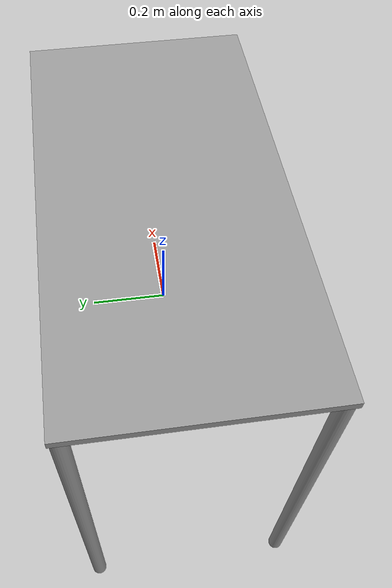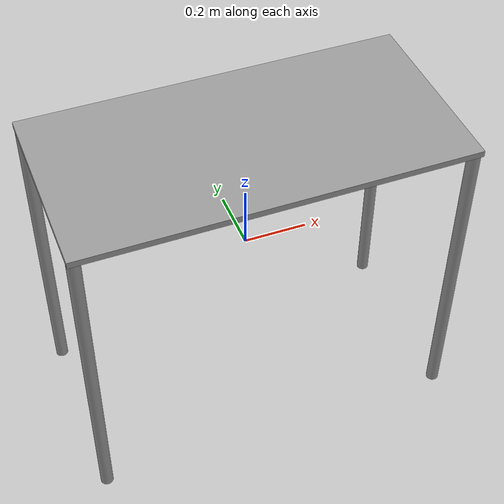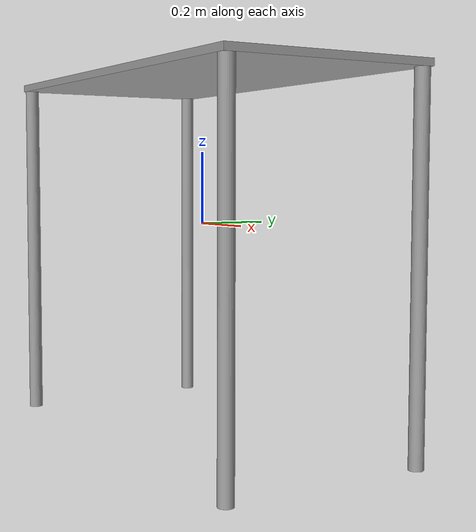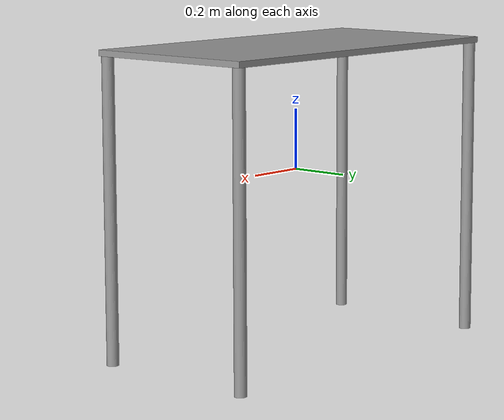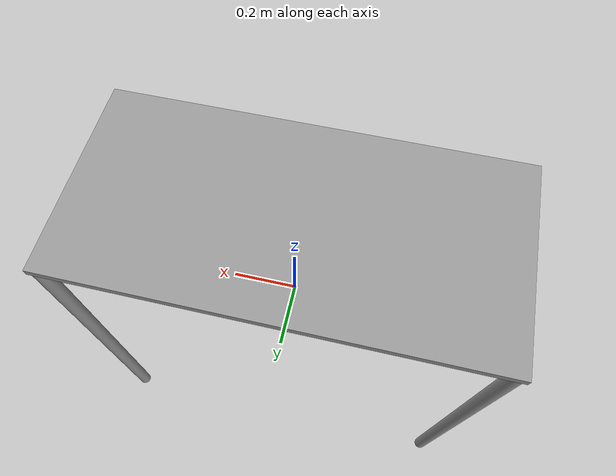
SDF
<?xml version='1.0'?>
<sdf version='1.6'>
  <model name='table'>
    <link name='link_0'>
      <inertial>
        <mass>710</mass>
        <inertia>
          <ixx>118.333</ixx>
          <ixy>0</ixy>
          <ixz>0</ixz>
          <iyy>118.333</iyy>
          <iyz>0</iyz>
          <izz>118.333</izz>
        </inertia>
        <pose frame=''>0 0 0 0 -0 0</pose>
      </inertial>
      <pose frame=''>0 0 0.408 0 -0 0</pose>
      <gravity>1</gravity>
      <self_collide>0</self_collide>
      <kinematic>0</kinematic>
      <enable_wind>0</enable_wind>
      <visual name='visual'>
        <pose frame=''>0 0 0 0 -0 0</pose>
        <geometry>
          <box>
            <size>1.2 0.6 0.02</size>
          </box>
        </geometry>
        <material>
          <lighting>1</lighting>
          <script>
            <uri>file://media/materials/scripts/gazebo.material</uri>
            <name>Gazebo/Grey</name>
          </script>
          <shader type='vertex'>
            <normal_map>__default__</normal_map>
          </shader>
          <ambient>0.3 0.3 0.3 1</ambient>
          <diffuse>0.7 0.7 0.7 1</diffuse>
          <specular>0.01 0.01 0.01 1</specular>
          <emissive>0 0 0 1</emissive>
        </material>
        <transparency>0</transparency>
        <cast_shadows>1</cast_shadows>
      </visual>
      <collision name='collision'>
        <laser_retro>0</laser_retro>
        <max_contacts>10</max_contacts>
        <pose frame=''>0 0 0 0 -0 0</pose>
        <geometry>
          <box>
            <size>1.2 0.6 0.02</size>
          </box>
        </geometry>
        <surface>
          <friction>
            <ode>
              <mu>1</mu>
              <mu2>1</mu2>
              <fdir1>0 0 0</fdir1>
              <slip1>0</slip1>
              <slip2>0</slip2>
            </ode>
            <torsional>
              <coefficient>1</coefficient>
              <patch_radius>0</patch_radius>
              <surface_radius>0</surface_radius>
              <use_patch_radius>1</use_patch_radius>
              <ode>
                <slip>0</slip>
              </ode>
            </torsional>
          </friction>
          <bounce>
            <restitution_coefficient>0</restitution_coefficient>
            <threshold>1e+06</threshold>
          </bounce>
          <contact>
            <collide_without_contact>0</collide_without_contact>
            <collide_without_contact_bitmask>1</collide_without_contact_bitmask>
            <collide_bitmask>1</collide_bitmask>
            <ode>
              <soft_cfm>0</soft_cfm>
              <soft_erp>0.2</soft_erp>
              <kp>1e+13</kp>
              <kd>1</kd>
              <max_vel>0.01</max_vel>
              <min_depth>0</min_depth>
            </ode>
            <bullet>
              <split_impulse>1</split_impulse>
              <split_impulse_penetration_threshold>-0.01</split_impulse_penetration_threshold>
              <soft_cfm>0</soft_cfm>
              <soft_erp>0.2</soft_erp>
              <kp>1e+13</kp>
              <kd>1</kd>
            </bullet>
          </contact>
        </surface>
      </collision>
    </link>
    <link name='link_1'>
      <inertial>
        <mass>9.55044</mass>
        <inertia>
          <ixx>0.796825</ixx>
          <ixy>0</ixy>
          <ixz>0</ixz>
          <iyy>0.796825</iyy>
          <iyz>0</iyz>
          <izz>0.00191009</izz>
        </inertia>
        <pose frame=''>0 0 0 0 -0 0</pose>
      </inertial>
      <pose frame=''>-0.58 -0.28 -0.102 0 -0 0</pose>
      <gravity>1</gravity>
      <self_collide>0</self_collide>
      <kinematic>0</kinematic>
      <enable_wind>0</enable_wind>
      <visual name='visual'>
        <pose frame=''>0 0 0 0 -0 0</pose>
        <geometry>
          <cylinder>
            <radius>0.02</radius>
            <length>1</length>
          </cylinder>
        </geometry>
        <material>
          <lighting>1</lighting>
          <script>
            <uri>file://media/materials/scripts/gazebo.material</uri>
            <name>Gazebo/Grey</name>
          </script>
          <shader type='vertex'>
            <normal_map>__default__</normal_map>
          </shader>
          <ambient>0.3 0.3 0.3 1</ambient>
          <diffuse>0.7 0.7 0.7 1</diffuse>
          <specular>0.01 0.01 0.01 1</specular>
          <emissive>0 0 0 1</emissive>
        </material>
        <transparency>0</transparency>
        <cast_shadows>1</cast_shadows>
      </visual>
      <collision name='collision'>
        <laser_retro>0</laser_retro>
        <max_contacts>10</max_contacts>
        <pose frame=''>0 0 0 0 -0 0</pose>
        <geometry>
          <cylinder>
            <radius>0.02</radius>
            <length>1</length>
          </cylinder>
        </geometry>
        <surface>
          <friction>
            <ode>
              <mu>1</mu>
              <mu2>1</mu2>
              <fdir1>0 0 0</fdir1>
              <slip1>0</slip1>
              <slip2>0</slip2>
            </ode>
            <torsional>
              <coefficient>1</coefficient>
              <patch_radius>0</patch_radius>
              <surface_radius>0</surface_radius>
              <use_patch_radius>1</use_patch_radius>
              <ode>
                <slip>0</slip>
              </ode>
            </torsional>
          </friction>
          <bounce>
            <restitution_coefficient>0</restitution_coefficient>
            <threshold>1e+06</threshold>
          </bounce>
          <contact>
            <collide_without_contact>0</collide_without_contact>
            <collide_without_contact_bitmask>1</collide_without_contact_bitmask>
            <collide_bitmask>1</collide_bitmask>
            <ode>
              <soft_cfm>0</soft_cfm>
              <soft_erp>0.2</soft_erp>
              <kp>1e+13</kp>
              <kd>1</kd>
              <max_vel>0.01</max_vel>
              <min_depth>0</min_depth>
            </ode>
            <bullet>
              <split_impulse>1</split_impulse>
              <split_impulse_penetration_threshold>-0.01</split_impulse_penetration_threshold>
              <soft_cfm>0</soft_cfm>
              <soft_erp>0.2</soft_erp>
              <kp>1e+13</kp>
              <kd>1</kd>
            </bullet>
          </contact>
        </surface>
      </collision>
    </link>
    <link name='link_1_clone'>
      <inertial>
        <mass>9.55044</mass>
        <inertia>
          <ixx>0.796825</ixx>
          <ixy>0</ixy>
          <ixz>0</ixz>
          <iyy>0.796825</iyy>
          <iyz>0</iyz>
          <izz>0.00191009</izz>
        </inertia>
        <pose frame=''>0 0 0 0 -0 0</pose>
      </inertial>
      <pose frame=''>0.58 -0.28 -0.102 0 -0 0</pose>
      <gravity>1</gravity>
      <self_collide>0</self_collide>
      <kinematic>0</kinematic>
      <enable_wind>0</enable_wind>
      <visual name='visual'>
        <pose frame=''>0 0 0 0 -0 0</pose>
        <geometry>
          <cylinder>
            <radius>0.02</radius>
            <length>1</length>
          </cylinder>
        </geometry>
        <material>
          <lighting>1</lighting>
          <script>
            <uri>file://media/materials/scripts/gazebo.material</uri>
            <name>Gazebo/Grey</name>
          </script>
          <shader type='vertex'>
            <normal_map>__default__</normal_map>
          </shader>
          <ambient>0.3 0.3 0.3 1</ambient>
          <diffuse>0.7 0.7 0.7 1</diffuse>
          <specular>0.01 0.01 0.01 1</specular>
          <emissive>0 0 0 1</emissive>
        </material>
        <transparency>0</transparency>
        <cast_shadows>1</cast_shadows>
      </visual>
      <collision name='collision'>
        <laser_retro>0</laser_retro>
        <max_contacts>10</max_contacts>
        <pose frame=''>0 0 0 0 -0 0</pose>
        <geometry>
          <cylinder>
            <radius>0.02</radius>
            <length>1</length>
          </cylinder>
        </geometry>
        <surface>
          <friction>
            <ode>
              <mu>1</mu>
              <mu2>1</mu2>
              <fdir1>0 0 0</fdir1>
              <slip1>0</slip1>
              <slip2>0</slip2>
            </ode>
            <torsional>
              <coefficient>1</coefficient>
              <patch_radius>0</patch_radius>
              <surface_radius>0</surface_radius>
              <use_patch_radius>1</use_patch_radius>
              <ode>
                <slip>0</slip>
              </ode>
            </torsional>
          </friction>
          <bounce>
            <restitution_coefficient>0</restitution_coefficient>
            <threshold>1e+06</threshold>
          </bounce>
          <contact>
            <collide_without_contact>0</collide_without_contact>
            <collide_without_contact_bitmask>1</collide_without_contact_bitmask>
            <collide_bitmask>1</collide_bitmask>
            <ode>
              <soft_cfm>0</soft_cfm>
              <soft_erp>0.2</soft_erp>
              <kp>1e+13</kp>
              <kd>1</kd>
              <max_vel>0.01</max_vel>
              <min_depth>0</min_depth>
            </ode>
            <bullet>
              <split_impulse>1</split_impulse>
              <split_impulse_penetration_threshold>-0.01</split_impulse_penetration_threshold>
              <soft_cfm>0</soft_cfm>
              <soft_erp>0.2</soft_erp>
              <kp>1e+13</kp>
              <kd>1</kd>
            </bullet>
          </contact>
        </surface>
      </collision>
    </link>
    <link name='link_1_clone_clone'>
      <inertial>
        <mass>9.55044</mass>
        <inertia>
          <ixx>0.796825</ixx>
          <ixy>0</ixy>
          <ixz>0</ixz>
          <iyy>0.796825</iyy>
          <iyz>0</iyz>
          <izz>0.00191009</izz>
        </inertia>
        <pose frame=''>0 0 0 0 -0 0</pose>
      </inertial>
      <pose frame=''>0.58 0.28 -0.102 0 -0 0</pose>
      <gravity>1</gravity>
      <self_collide>0</self_collide>
      <kinematic>0</kinematic>
      <enable_wind>0</enable_wind>
      <visual name='visual'>
        <pose frame=''>0 0 0 0 -0 0</pose>
        <geometry>
          <cylinder>
            <radius>0.02</radius>
            <length>1</length>
          </cylinder>
        </geometry>
        <material>
          <lighting>1</lighting>
          <script>
            <uri>file://media/materials/scripts/gazebo.material</uri>
            <name>Gazebo/Grey</name>
          </script>
          <shader type='vertex'>
            <normal_map>__default__</normal_map>
          </shader>
          <ambient>0.3 0.3 0.3 1</ambient>
          <diffuse>0.7 0.7 0.7 1</diffuse>
          <specular>0.01 0.01 0.01 1</specular>
          <emissive>0 0 0 1</emissive>
        </material>
        <transparency>0</transparency>
        <cast_shadows>1</cast_shadows>
      </visual>
      <collision name='collision'>
        <laser_retro>0</laser_retro>
        <max_contacts>10</max_contacts>
        <pose frame=''>0 0 0 0 -0 0</pose>
        <geometry>
          <cylinder>
            <radius>0.02</radius>
            <length>1</length>
          </cylinder>
        </geometry>
        <surface>
          <friction>
            <ode>
              <mu>1</mu>
              <mu2>1</mu2>
              <fdir1>0 0 0</fdir1>
              <slip1>0</slip1>
              <slip2>0</slip2>
            </ode>
            <torsional>
              <coefficient>1</coefficient>
              <patch_radius>0</patch_radius>
              <surface_radius>0</surface_radius>
              <use_patch_radius>1</use_patch_radius>
              <ode>
                <slip>0</slip>
              </ode>
            </torsional>
          </friction>
          <bounce>
            <restitution_coefficient>0</restitution_coefficient>
            <threshold>1e+06</threshold>
          </bounce>
          <contact>
            <collide_without_contact>0</collide_without_contact>
            <collide_without_contact_bitmask>1</collide_without_contact_bitmask>
            <collide_bitmask>1</collide_bitmask>
            <ode>
              <soft_cfm>0</soft_cfm>
              <soft_erp>0.2</soft_erp>
              <kp>1e+13</kp>
              <kd>1</kd>
              <max_vel>0.01</max_vel>
              <min_depth>0</min_depth>
            </ode>
            <bullet>
              <split_impulse>1</split_impulse>
              <split_impulse_penetration_threshold>-0.01</split_impulse_penetration_threshold>
              <soft_cfm>0</soft_cfm>
              <soft_erp>0.2</soft_erp>
              <kp>1e+13</kp>
              <kd>1</kd>
            </bullet>
          </contact>
        </surface>
      </collision>
    </link>
    <link name='link_1_clone_clone_0'>
      <inertial>
        <mass>9.55044</mass>
        <inertia>
          <ixx>0.796825</ixx>
          <ixy>0</ixy>
          <ixz>0</ixz>
          <iyy>0.796825</iyy>
          <iyz>0</iyz>
          <izz>0.00191009</izz>
        </inertia>
        <pose frame=''>0 0 0 0 -0 0</pose>
      </inertial>
      <pose frame=''>-0.58 0.28 -0.102 0 -0 0</pose>
      <gravity>1</gravity>
      <self_collide>0</self_collide>
      <kinematic>0</kinematic>
      <enable_wind>0</enable_wind>
      <visual name='visual'>
        <pose frame=''>0 0 0 0 -0 0</pose>
        <geometry>
          <cylinder>
            <radius>0.02</radius>
            <length>1</length>
          </cylinder>
        </geometry>
        <material>
          <lighting>1</lighting>
          <script>
            <uri>file://media/materials/scripts/gazebo.material</uri>
            <name>Gazebo/Grey</name>
          </script>
          <shader type='vertex'>
            <normal_map>__default__</normal_map>
          </shader>
          <ambient>0.3 0.3 0.3 1</ambient>
          <diffuse>0.7 0.7 0.7 1</diffuse>
          <specular>0.01 0.01 0.01 1</specular>
          <emissive>0 0 0 1</emissive>
        </material>
        <transparency>0</transparency>
        <cast_shadows>1</cast_shadows>
      </visual>
      <collision name='collision'>
        <laser_retro>0</laser_retro>
        <max_contacts>10</max_contacts>
        <pose frame=''>0 0 0 0 -0 0</pose>
        <geometry>
          <cylinder>
            <radius>0.02</radius>
            <length>1</length>
          </cylinder>
        </geometry>
        <surface>
          <friction>
            <ode>
              <mu>1</mu>
              <mu2>1</mu2>
              <fdir1>0 0 0</fdir1>
              <slip1>0</slip1>
              <slip2>0</slip2>
            </ode>
            <torsional>
              <coefficient>1</coefficient>
              <patch_radius>0</patch_radius>
              <surface_radius>0</surface_radius>
              <use_patch_radius>1</use_patch_radius>
              <ode>
                <slip>0</slip>
              </ode>
            </torsional>
          </friction>
          <bounce>
            <restitution_coefficient>0</restitution_coefficient>
            <threshold>1e+06</threshold>
          </bounce>
          <contact>
            <collide_without_contact>0</collide_without_contact>
            <collide_without_contact_bitmask>1</collide_without_contact_bitmask>
            <collide_bitmask>1</collide_bitmask>
            <ode>
              <soft_cfm>0</soft_cfm>
              <soft_erp>0.2</soft_erp>
              <kp>1e+13</kp>
              <kd>1</kd>
              <max_vel>0.01</max_vel>
              <min_depth>0</min_depth>
            </ode>
            <bullet>
              <split_impulse>1</split_impulse>
              <split_impulse_penetration_threshold>-0.01</split_impulse_penetration_threshold>
              <soft_cfm>0</soft_cfm>
              <soft_erp>0.2</soft_erp>
              <kp>1e+13</kp>
              <kd>1</kd>
            </bullet>
          </contact>
        </surface>
      </collision>
    </link>
    <joint name='link_0_JOINT_0' type='fixed'>
      <parent>link_0</parent>
      <child>link_1</child>
      <pose frame=''>0 0 0 0 -0 0</pose>
      <physics>
        <ode>
          <limit>
            <cfm>0</cfm>
            <erp>0.2</erp>
          </limit>
          <suspension>
            <cfm>0</cfm>
            <erp>0.2</erp>
          </suspension>
        </ode>
      </physics>
    </joint>
    <joint name='link_0_JOINT_1' type='fixed'>
      <parent>link_0</parent>
      <child>link_1_clone</child>
      <pose frame=''>0 0 0 0 -0 0</pose>
      <physics>
        <ode>
          <limit>
            <cfm>0</cfm>
            <erp>0.2</erp>
          </limit>
          <suspension>
            <cfm>0</cfm>
            <erp>0.2</erp>
          </suspension>
        </ode>
      </physics>
    </joint>
    <joint name='link_0_JOINT_2' type='fixed'>
      <parent>link_0</parent>
      <child>link_1_clone_clone_0</child>
      <pose frame=''>0 0 0 0 -0 0</pose>
      <physics>
        <ode>
          <limit>
            <cfm>0</cfm>
            <erp>0.2</erp>
          </limit>
          <suspension>
            <cfm>0</cfm>
            <erp>0.2</erp>
          </suspension>
        </ode>
      </physics>
    </joint>
    <joint name='link_0_JOINT_3' type='fixed'>
      <parent>link_0</parent>
      <child>link_1_clone_clone</child>
      <pose frame=''>0 0 0 0 -0 0</pose>
      <physics>
        <ode>
          <limit>
            <cfm>0</cfm>
            <erp>0.2</erp>
          </limit>
          <suspension>
            <cfm>0</cfm>
            <erp>0.2</erp>
          </suspension>
        </ode>
      </physics>
    </joint>
    <static>0</static>
    <allow_auto_disable>1</allow_auto_disable>
  </model>
</sdf>
